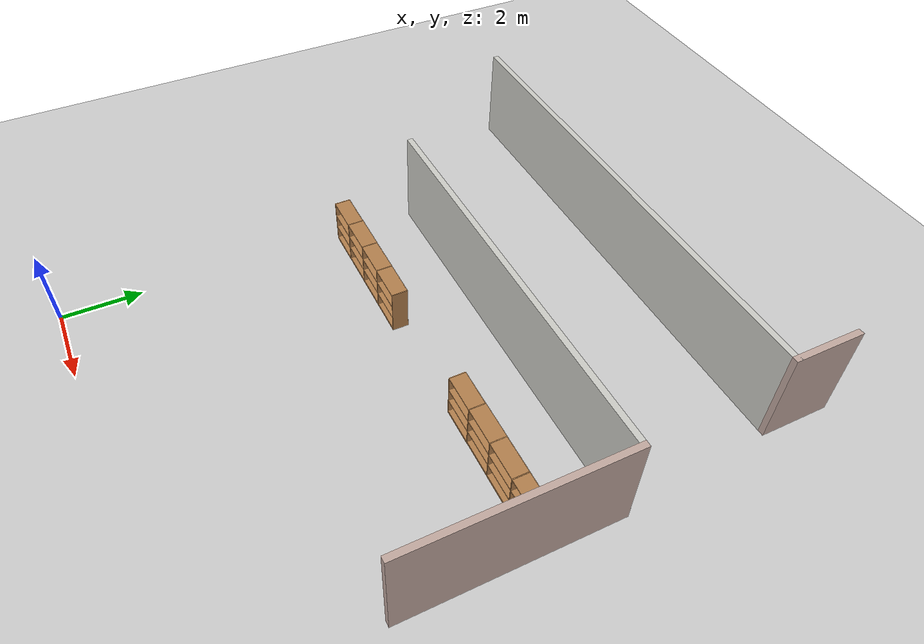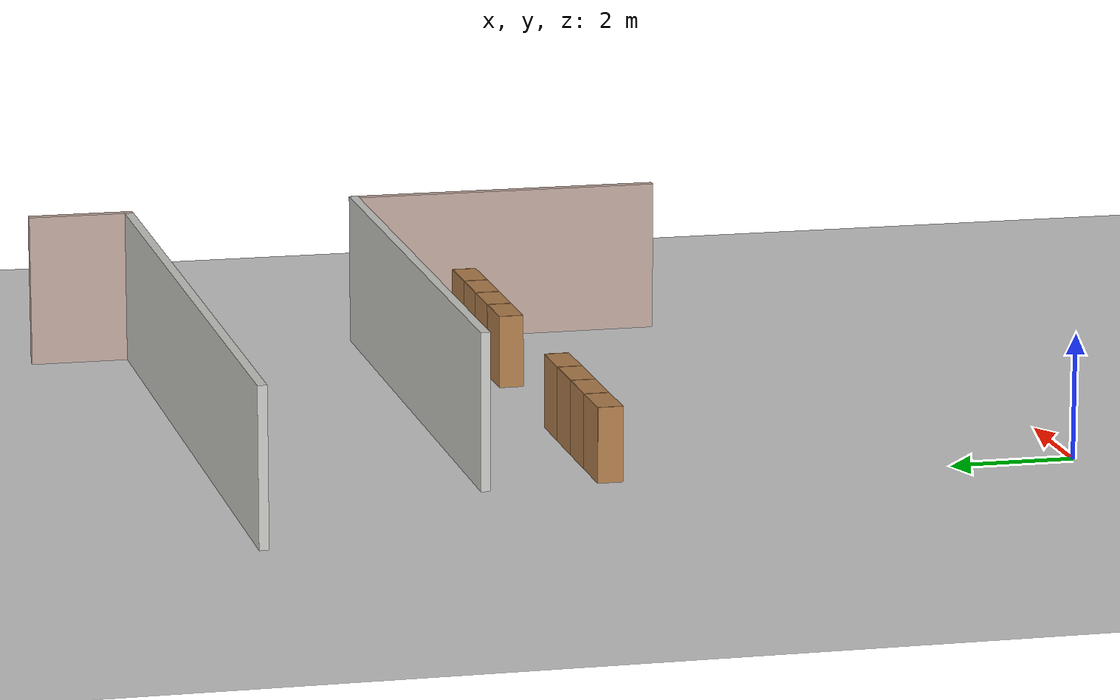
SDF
<sdf version="1.6">
 <world name="default">
  <model name="ground_plane">
   <static>1</static>
   <link name="link">
    <collision name="collision">
     <geometry><plane><normal>0 0 1</normal><size>100 100</size></plane></geometry>
     <surface><friction><ode><mu>100</mu><mu2>50</mu2></ode></friction></surface>
    </collision>
    <visual name="visual">
     <cast_shadows>0</cast_shadows>
     <geometry><plane><normal>0 0 1</normal><size>100 100</size></plane></geometry>
     <material>
      <script><uri>file://media/materials/scripts/gazebo.material</uri><name>Gazebo/Grey</name></script>
     </material>
    </visual>
   </link>
  </model>
  <model name="floor">
   <link name="Wall_138">
    <pose>2.52989 14.5529 0 0 -0 0</pose>
    <visual name="Wall_138_Visual">
     <pose>0 0 1.25 0 -0 0</pose>
     <geometry><box><size>12.5 0.15 2.5</size></box></geometry>
     <material>
      <script><uri>file://media/materials/scripts/gazebo.material</uri><name>Gazebo/CeilingTiled</name></script>
      <ambient>0.760784 0.662745 0.627451 1</ambient>
     </material>
     <meta><layer>0</layer></meta>
    </visual>
    <collision name="Wall_138_Collision">
     <pose>0 0 1.25 0 -0 0</pose>
     <geometry><box><size>12.5 0.15 2.5</size></box></geometry>
     <surface>
      <friction>
       <ode><mu>1</mu><mu2>1</mu2><fdir1>0 0 0</fdir1><slip1>0</slip1><slip2>0</slip2></ode>
       <torsional>
        <coefficient>1</coefficient>
        <patch_radius>0</patch_radius>
        <surface_radius>0</surface_radius>
        <use_patch_radius>1</use_patch_radius>
        <ode><slip>0</slip></ode>
       </torsional>
      </friction>
      <bounce><restitution_coefficient>0</restitution_coefficient><threshold>1e+06</threshold></bounce>
      <contact>
       <collide_without_contact>0</collide_without_contact>
       <collide_without_contact_bitmask>1</collide_without_contact_bitmask>
       <collide_bitmask>1</collide_bitmask>
       <ode>
        <soft_cfm>0</soft_cfm>
        <soft_erp>0.2</soft_erp>
        <kp>1e+13</kp>
        <kd>1</kd>
        <max_vel>0.01</max_vel>
        <min_depth>0</min_depth>
       </ode>
       <bullet>
        <split_impulse>1</split_impulse>
        <split_impulse_penetration_threshold>-0.01</split_impulse_penetration_threshold>
        <soft_cfm>0</soft_cfm>
        <soft_erp>0.2</soft_erp>
        <kp>1e+13</kp>
        <kd>1</kd>
       </bullet>
      </contact>
     </surface>
    </collision>
   </link>
   <link name="Wall_139">
    <pose>8.70489 15.3529 0 0 -0 1.5708</pose>
    <visual name="Wall_139_Visual">
     <pose>0 0 1.25 0 -0 0</pose>
     <geometry><box><size>1.75 0.15 2.5</size></box></geometry>
     <material>
      <script><uri>file://media/materials/scripts/gazebo.material</uri><name>Gazebo/Grey</name></script>
      <ambient>0.760784 0.662745 0.627451 1</ambient>
     </material>
     <meta><layer>0</layer></meta>
    </visual>
    <collision name="Wall_139_Collision">
     <pose>0 0 1.25 0 -0 0</pose>
     <geometry><box><size>1.75 0.15 2.5</size></box></geometry>
     <surface>
      <friction>
       <ode><mu>1</mu><mu2>1</mu2><fdir1>0 0 0</fdir1><slip1>0</slip1><slip2>0</slip2></ode>
       <torsional>
        <coefficient>1</coefficient>
        <patch_radius>0</patch_radius>
        <surface_radius>0</surface_radius>
        <use_patch_radius>1</use_patch_radius>
        <ode><slip>0</slip></ode>
       </torsional>
      </friction>
      <bounce><restitution_coefficient>0</restitution_coefficient><threshold>1e+06</threshold></bounce>
      <contact>
       <collide_without_contact>0</collide_without_contact>
       <collide_without_contact_bitmask>1</collide_without_contact_bitmask>
       <collide_bitmask>1</collide_bitmask>
       <ode>
        <soft_cfm>0</soft_cfm>
        <soft_erp>0.2</soft_erp>
        <kp>1e+13</kp>
        <kd>1</kd>
        <max_vel>0.01</max_vel>
        <min_depth>0</min_depth>
       </ode>
       <bullet>
        <split_impulse>1</split_impulse>
        <split_impulse_penetration_threshold>-0.01</split_impulse_penetration_threshold>
        <soft_cfm>0</soft_cfm>
        <soft_erp>0.2</soft_erp>
        <kp>1e+13</kp>
        <kd>1</kd>
       </bullet>
      </contact>
     </surface>
    </collision>
   </link>
   <link name="Wall_200">
    <pose>3.99765 10.6471 0 0 -0 0</pose>
    <visual name="Wall_200_Visual">
     <pose>0 0 1.25 0 -0 0</pose>
     <geometry><box><size>10.3 0.15 2.5</size></box></geometry>
     <material>
      <script><uri>file://media/materials/scripts/gazebo.material</uri><name>Gazebo/CeilingTiled</name></script>
      <ambient>0.760784 0.662745 0.627451 1</ambient>
     </material>
     <meta><layer>0</layer></meta>
    </visual>
    <collision name="Wall_200_Collision">
     <pose>0 0 1.25 0 -0 0</pose>
     <geometry><box><size>10.3 0.15 2.5</size></box></geometry>
     <surface>
      <friction>
       <ode><mu>1</mu><mu2>1</mu2><fdir1>0 0 0</fdir1><slip1>0</slip1><slip2>0</slip2></ode>
       <torsional>
        <coefficient>1</coefficient>
        <patch_radius>0</patch_radius>
        <surface_radius>0</surface_radius>
        <use_patch_radius>1</use_patch_radius>
        <ode><slip>0</slip></ode>
       </torsional>
      </friction>
      <bounce><restitution_coefficient>0</restitution_coefficient><threshold>1e+06</threshold></bounce>
      <contact>
       <collide_without_contact>0</collide_without_contact>
       <collide_without_contact_bitmask>1</collide_without_contact_bitmask>
       <collide_bitmask>1</collide_bitmask>
       <ode>
        <soft_cfm>0</soft_cfm>
        <soft_erp>0.2</soft_erp>
        <kp>1e+13</kp>
        <kd>1</kd>
        <max_vel>0.01</max_vel>
        <min_depth>0</min_depth>
       </ode>
       <bullet>
        <split_impulse>1</split_impulse>
        <split_impulse_penetration_threshold>-0.01</split_impulse_penetration_threshold>
        <soft_cfm>0</soft_cfm>
        <soft_erp>0.2</soft_erp>
        <kp>1e+13</kp>
        <kd>1</kd>
       </bullet>
      </contact>
     </surface>
    </collision>
   </link>
   <link name="Wall_81">
    <pose>9.07265 8.09708 0 0 0 -1.5708</pose>
    <visual name="Wall_81_Visual">
     <pose>0 0 1.25 0 -0 0</pose>
     <geometry><box><size>5.25 0.15 2.5</size></box></geometry>
     <material>
      <script><uri>file://media/materials/scripts/gazebo.material</uri><name>Gazebo/Grey</name></script>
      <ambient>0.760784 0.662745 0.627451 1</ambient>
     </material>
     <meta><layer>0</layer></meta>
    </visual>
    <collision name="Wall_81_Collision">
     <pose>0 0 1.25 0 -0 0</pose>
     <geometry><box><size>5.25 0.15 2.5</size></box></geometry>
     <surface>
      <friction>
       <ode><mu>1</mu><mu2>1</mu2><fdir1>0 0 0</fdir1><slip1>0</slip1><slip2>0</slip2></ode>
       <torsional>
        <coefficient>1</coefficient>
        <patch_radius>0</patch_radius>
        <surface_radius>0</surface_radius>
        <use_patch_radius>1</use_patch_radius>
        <ode><slip>0</slip></ode>
       </torsional>
      </friction>
      <bounce><restitution_coefficient>0</restitution_coefficient><threshold>1e+06</threshold></bounce>
      <contact>
       <collide_without_contact>0</collide_without_contact>
       <collide_without_contact_bitmask>1</collide_without_contact_bitmask>
       <collide_bitmask>1</collide_bitmask>
       <ode>
        <soft_cfm>0</soft_cfm>
        <soft_erp>0.2</soft_erp>
        <kp>1e+13</kp>
        <kd>1</kd>
        <max_vel>0.01</max_vel>
        <min_depth>0</min_depth>
       </ode>
       <bullet>
        <split_impulse>1</split_impulse>
        <split_impulse_penetration_threshold>-0.01</split_impulse_penetration_threshold>
        <soft_cfm>0</soft_cfm>
        <soft_erp>0.2</soft_erp>
        <kp>1e+13</kp>
        <kd>1</kd>
       </bullet>
      </contact>
     </surface>
    </collision>
   </link>
   <static>1</static>
   <pose>1.26361 -1.27025 0 0 -0 0</pose>
  </model>
  <model name="Bookshelf-4_clone_2">
   <model name="bookshelf">
    <static>1</static>
    <link name="link">
     <inertial><mass>1</mass></inertial>
     <collision name="back">
      <pose>0 0.005 0.6 0 -0 0</pose>
      <geometry><box><size>0.9 0.01 1.2</size></box></geometry>
     </collision>
     <visual name="visual1">
      <pose>0 0.005 0.6 0 -0 0</pose>
      <geometry><box><size>0.9 0.01 1.2</size></box></geometry>
      <material>
       <script><uri>file://media/materials/scripts/gazebo.material</uri><name>Gazebo/Wood</name></script>
      </material>
     </visual>
     <collision name="left_side">
      <pose>0.45 -0.195 0.6 0 -0 0</pose>
      <geometry><box><size>0.02 0.4 1.2</size></box></geometry>
     </collision>
     <visual name="visual2">
      <pose>0.45 -0.195 0.6 0 -0 0</pose>
      <geometry><box><size>0.02 0.4 1.2</size></box></geometry>
      <material>
       <script><uri>file://media/materials/scripts/gazebo.material</uri><name>Gazebo/Wood</name></script>
      </material>
     </visual>
     <collision name="right_side">
      <pose>-0.45 -0.195 0.6 0 -0 0</pose>
      <geometry><box><size>0.02 0.4 1.2</size></box></geometry>
     </collision>
     <visual name="visual3">
      <pose>-0.45 -0.195 0.6 0 -0 0</pose>
      <geometry><box><size>0.02 0.4 1.2</size></box></geometry>
      <material>
       <script><uri>file://media/materials/scripts/gazebo.material</uri><name>Gazebo/Wood</name></script>
      </material>
     </visual>
     <collision name="bottom">
      <pose>0 -0.195 0.03 0 -0 0</pose>
      <geometry><box><size>0.88 0.4 0.06</size></box></geometry>
     </collision>
     <visual name="visual4">
      <pose>0 -0.195 0.03 0 -0 0</pose>
      <geometry><box><size>0.88 0.4 0.06</size></box></geometry>
      <material>
       <script><uri>file://media/materials/scripts/gazebo.material</uri><name>Gazebo/Wood</name></script>
      </material>
     </visual>
     <collision name="top">
      <pose>0 -0.195 1.19 0 -0 0</pose>
      <geometry><box><size>0.88 0.4 0.02</size></box></geometry>
     </collision>
     <visual name="visual5">
      <pose>0 -0.195 1.19 0 -0 0</pose>
      <geometry><box><size>0.88 0.4 0.02</size></box></geometry>
      <material>
       <script><uri>file://media/materials/scripts/gazebo.material</uri><name>Gazebo/Wood</name></script>
      </material>
     </visual>
     <collision name="low_shelf">
      <pose>0 -0.195 0.43 0 -0 0</pose>
      <geometry><box><size>0.88 0.4 0.02</size></box></geometry>
     </collision>
     <visual name="visual6">
      <pose>0 -0.195 0.43 0 -0 0</pose>
      <geometry><box><size>0.88 0.4 0.02</size></box></geometry>
      <material>
       <script><uri>file://media/materials/scripts/gazebo.material</uri><name>Gazebo/Wood</name></script>
      </material>
     </visual>
     <collision name="high_shelf">
      <pose>0 -0.195 0.8 0 -0 0</pose>
      <geometry><box><size>0.88 0.4 0.02</size></box></geometry>
     </collision>
     <visual name="visual7">
      <pose>0 -0.195 0.8 0 -0 0</pose>
      <geometry><box><size>0.88 0.4 0.02</size></box></geometry>
      <material>
       <script><uri>file://media/materials/scripts/gazebo.material</uri><name>Gazebo/Wood</name></script>
      </material>
     </visual>
    </link>
    <pose>-1.35671 -0.002097 0 0 -0 0</pose>
   </model>
   <model name="bookshelf_0">
    <static>1</static>
    <link name="link">
     <inertial><mass>1</mass></inertial>
     <collision name="back">
      <pose>0 0.005 0.6 0 -0 0</pose>
      <geometry><box><size>0.9 0.01 1.2</size></box></geometry>
     </collision>
     <visual name="visual1">
      <pose>0 0.005 0.6 0 -0 0</pose>
      <geometry><box><size>0.9 0.01 1.2</size></box></geometry>
      <material>
       <script><uri>file://media/materials/scripts/gazebo.material</uri><name>Gazebo/Wood</name></script>
      </material>
     </visual>
     <collision name="left_side">
      <pose>0.45 -0.195 0.6 0 -0 0</pose>
      <geometry><box><size>0.02 0.4 1.2</size></box></geometry>
     </collision>
     <visual name="visual2">
      <pose>0.45 -0.195 0.6 0 -0 0</pose>
      <geometry><box><size>0.02 0.4 1.2</size></box></geometry>
      <material>
       <script><uri>file://media/materials/scripts/gazebo.material</uri><name>Gazebo/Wood</name></script>
      </material>
     </visual>
     <collision name="right_side">
      <pose>-0.45 -0.195 0.6 0 -0 0</pose>
      <geometry><box><size>0.02 0.4 1.2</size></box></geometry>
     </collision>
     <visual name="visual3">
      <pose>-0.45 -0.195 0.6 0 -0 0</pose>
      <geometry><box><size>0.02 0.4 1.2</size></box></geometry>
      <material>
       <script><uri>file://media/materials/scripts/gazebo.material</uri><name>Gazebo/Wood</name></script>
      </material>
     </visual>
     <collision name="bottom">
      <pose>0 -0.195 0.03 0 -0 0</pose>
      <geometry><box><size>0.88 0.4 0.06</size></box></geometry>
     </collision>
     <visual name="visual4">
      <pose>0 -0.195 0.03 0 -0 0</pose>
      <geometry><box><size>0.88 0.4 0.06</size></box></geometry>
      <material>
       <script><uri>file://media/materials/scripts/gazebo.material</uri><name>Gazebo/Wood</name></script>
      </material>
     </visual>
     <collision name="top">
      <pose>0 -0.195 1.19 0 -0 0</pose>
      <geometry><box><size>0.88 0.4 0.02</size></box></geometry>
     </collision>
     <visual name="visual5">
      <pose>0 -0.195 1.19 0 -0 0</pose>
      <geometry><box><size>0.88 0.4 0.02</size></box></geometry>
      <material>
       <script><uri>file://media/materials/scripts/gazebo.material</uri><name>Gazebo/Wood</name></script>
      </material>
     </visual>
     <collision name="low_shelf">
      <pose>0 -0.195 0.43 0 -0 0</pose>
      <geometry><box><size>0.88 0.4 0.02</size></box></geometry>
     </collision>
     <visual name="visual6">
      <pose>0 -0.195 0.43 0 -0 0</pose>
      <geometry><box><size>0.88 0.4 0.02</size></box></geometry>
      <material>
       <script><uri>file://media/materials/scripts/gazebo.material</uri><name>Gazebo/Wood</name></script>
      </material>
     </visual>
     <collision name="high_shelf">
      <pose>0 -0.195 0.8 0 -0 0</pose>
      <geometry><box><size>0.88 0.4 0.02</size></box></geometry>
     </collision>
     <visual name="visual7">
      <pose>0 -0.195 0.8 0 -0 0</pose>
      <geometry><box><size>0.88 0.4 0.02</size></box></geometry>
      <material>
       <script><uri>file://media/materials/scripts/gazebo.material</uri><name>Gazebo/Wood</name></script>
      </material>
     </visual>
    </link>
    <pose>-0.452974 0.001386 0 0 -0 0</pose>
   </model>
   <model name="bookshelf_1">
    <static>1</static>
    <link name="link">
     <inertial><mass>1</mass></inertial>
     <collision name="back">
      <pose>0 0.005 0.6 0 -0 0</pose>
      <geometry><box><size>0.9 0.01 1.2</size></box></geometry>
     </collision>
     <visual name="visual1">
      <pose>0 0.005 0.6 0 -0 0</pose>
      <geometry><box><size>0.9 0.01 1.2</size></box></geometry>
      <material>
       <script><uri>file://media/materials/scripts/gazebo.material</uri><name>Gazebo/Wood</name></script>
      </material>
     </visual>
     <collision name="left_side">
      <pose>0.45 -0.195 0.6 0 -0 0</pose>
      <geometry><box><size>0.02 0.4 1.2</size></box></geometry>
     </collision>
     <visual name="visual2">
      <pose>0.45 -0.195 0.6 0 -0 0</pose>
      <geometry><box><size>0.02 0.4 1.2</size></box></geometry>
      <material>
       <script><uri>file://media/materials/scripts/gazebo.material</uri><name>Gazebo/Wood</name></script>
      </material>
     </visual>
     <collision name="right_side">
      <pose>-0.45 -0.195 0.6 0 -0 0</pose>
      <geometry><box><size>0.02 0.4 1.2</size></box></geometry>
     </collision>
     <visual name="visual3">
      <pose>-0.45 -0.195 0.6 0 -0 0</pose>
      <geometry><box><size>0.02 0.4 1.2</size></box></geometry>
      <material>
       <script><uri>file://media/materials/scripts/gazebo.material</uri><name>Gazebo/Wood</name></script>
      </material>
     </visual>
     <collision name="bottom">
      <pose>0 -0.195 0.03 0 -0 0</pose>
      <geometry><box><size>0.88 0.4 0.06</size></box></geometry>
     </collision>
     <visual name="visual4">
      <pose>0 -0.195 0.03 0 -0 0</pose>
      <geometry><box><size>0.88 0.4 0.06</size></box></geometry>
      <material>
       <script><uri>file://media/materials/scripts/gazebo.material</uri><name>Gazebo/Wood</name></script>
      </material>
     </visual>
     <collision name="top">
      <pose>0 -0.195 1.19 0 -0 0</pose>
      <geometry><box><size>0.88 0.4 0.02</size></box></geometry>
     </collision>
     <visual name="visual5">
      <pose>0 -0.195 1.19 0 -0 0</pose>
      <geometry><box><size>0.88 0.4 0.02</size></box></geometry>
      <material>
       <script><uri>file://media/materials/scripts/gazebo.material</uri><name>Gazebo/Wood</name></script>
      </material>
     </visual>
     <collision name="low_shelf">
      <pose>0 -0.195 0.43 0 -0 0</pose>
      <geometry><box><size>0.88 0.4 0.02</size></box></geometry>
     </collision>
     <visual name="visual6">
      <pose>0 -0.195 0.43 0 -0 0</pose>
      <geometry><box><size>0.88 0.4 0.02</size></box></geometry>
      <material>
       <script><uri>file://media/materials/scripts/gazebo.material</uri><name>Gazebo/Wood</name></script>
      </material>
     </visual>
     <collision name="high_shelf">
      <pose>0 -0.195 0.8 0 -0 0</pose>
      <geometry><box><size>0.88 0.4 0.02</size></box></geometry>
     </collision>
     <visual name="visual7">
      <pose>0 -0.195 0.8 0 -0 0</pose>
      <geometry><box><size>0.88 0.4 0.02</size></box></geometry>
      <material>
       <script><uri>file://media/materials/scripts/gazebo.material</uri><name>Gazebo/Wood</name></script>
      </material>
     </visual>
    </link>
    <pose>0.450456 0.000733 0 0 -0 0</pose>
   </model>
   <model name="bookshelf_2">
    <static>1</static>
    <link name="link">
     <inertial><mass>1</mass></inertial>
     <collision name="back">
      <pose>0 0.005 0.6 0 -0 0</pose>
      <geometry><box><size>0.9 0.01 1.2</size></box></geometry>
     </collision>
     <visual name="visual1">
      <pose>0 0.005 0.6 0 -0 0</pose>
      <geometry><box><size>0.9 0.01 1.2</size></box></geometry>
      <material>
       <script><uri>file://media/materials/scripts/gazebo.material</uri><name>Gazebo/Wood</name></script>
      </material>
     </visual>
     <collision name="left_side">
      <pose>0.45 -0.195 0.6 0 -0 0</pose>
      <geometry><box><size>0.02 0.4 1.2</size></box></geometry>
     </collision>
     <visual name="visual2">
      <pose>0.45 -0.195 0.6 0 -0 0</pose>
      <geometry><box><size>0.02 0.4 1.2</size></box></geometry>
      <material>
       <script><uri>file://media/materials/scripts/gazebo.material</uri><name>Gazebo/Wood</name></script>
      </material>
     </visual>
     <collision name="right_side">
      <pose>-0.45 -0.195 0.6 0 -0 0</pose>
      <geometry><box><size>0.02 0.4 1.2</size></box></geometry>
     </collision>
     <visual name="visual3">
      <pose>-0.45 -0.195 0.6 0 -0 0</pose>
      <geometry><box><size>0.02 0.4 1.2</size></box></geometry>
      <material>
       <script><uri>file://media/materials/scripts/gazebo.material</uri><name>Gazebo/Wood</name></script>
      </material>
     </visual>
     <collision name="bottom">
      <pose>0 -0.195 0.03 0 -0 0</pose>
      <geometry><box><size>0.88 0.4 0.06</size></box></geometry>
     </collision>
     <visual name="visual4">
      <pose>0 -0.195 0.03 0 -0 0</pose>
      <geometry><box><size>0.88 0.4 0.06</size></box></geometry>
      <material>
       <script><uri>file://media/materials/scripts/gazebo.material</uri><name>Gazebo/Wood</name></script>
      </material>
     </visual>
     <collision name="top">
      <pose>0 -0.195 1.19 0 -0 0</pose>
      <geometry><box><size>0.88 0.4 0.02</size></box></geometry>
     </collision>
     <visual name="visual5">
      <pose>0 -0.195 1.19 0 -0 0</pose>
      <geometry><box><size>0.88 0.4 0.02</size></box></geometry>
      <material>
       <script><uri>file://media/materials/scripts/gazebo.material</uri><name>Gazebo/Wood</name></script>
      </material>
     </visual>
     <collision name="low_shelf">
      <pose>0 -0.195 0.43 0 -0 0</pose>
      <geometry><box><size>0.88 0.4 0.02</size></box></geometry>
     </collision>
     <visual name="visual6">
      <pose>0 -0.195 0.43 0 -0 0</pose>
      <geometry><box><size>0.88 0.4 0.02</size></box></geometry>
      <material>
       <script><uri>file://media/materials/scripts/gazebo.material</uri><name>Gazebo/Wood</name></script>
      </material>
     </visual>
     <collision name="high_shelf">
      <pose>0 -0.195 0.8 0 -0 0</pose>
      <geometry><box><size>0.88 0.4 0.02</size></box></geometry>
     </collision>
     <visual name="visual7">
      <pose>0 -0.195 0.8 0 -0 0</pose>
      <geometry><box><size>0.88 0.4 0.02</size></box></geometry>
      <material>
       <script><uri>file://media/materials/scripts/gazebo.material</uri><name>Gazebo/Wood</name></script>
      </material>
     </visual>
    </link>
    <pose>1.35922 -1.7e-05 0 0 -0 0</pose>
   </model>
   <static>0</static>
   <pose>2.02248 7.58893 0 0 -0 0</pose>
  </model>
  <model name="Bookshelf-4_clone_6">
   <model name="bookshelf">
    <static>1</static>
    <link name="link">
     <inertial><mass>1</mass></inertial>
     <collision name="back">
      <pose>0 0.005 0.6 0 -0 0</pose>
      <geometry><box><size>0.9 0.01 1.2</size></box></geometry>
     </collision>
     <visual name="visual1">
      <pose>0 0.005 0.6 0 -0 0</pose>
      <geometry><box><size>0.9 0.01 1.2</size></box></geometry>
      <material>
       <script><uri>file://media/materials/scripts/gazebo.material</uri><name>Gazebo/Wood</name></script>
      </material>
     </visual>
     <collision name="left_side">
      <pose>0.45 -0.195 0.6 0 -0 0</pose>
      <geometry><box><size>0.02 0.4 1.2</size></box></geometry>
     </collision>
     <visual name="visual2">
      <pose>0.45 -0.195 0.6 0 -0 0</pose>
      <geometry><box><size>0.02 0.4 1.2</size></box></geometry>
      <material>
       <script><uri>file://media/materials/scripts/gazebo.material</uri><name>Gazebo/Wood</name></script>
      </material>
     </visual>
     <collision name="right_side">
      <pose>-0.45 -0.195 0.6 0 -0 0</pose>
      <geometry><box><size>0.02 0.4 1.2</size></box></geometry>
     </collision>
     <visual name="visual3">
      <pose>-0.45 -0.195 0.6 0 -0 0</pose>
      <geometry><box><size>0.02 0.4 1.2</size></box></geometry>
      <material>
       <script><uri>file://media/materials/scripts/gazebo.material</uri><name>Gazebo/Wood</name></script>
      </material>
     </visual>
     <collision name="bottom">
      <pose>0 -0.195 0.03 0 -0 0</pose>
      <geometry><box><size>0.88 0.4 0.06</size></box></geometry>
     </collision>
     <visual name="visual4">
      <pose>0 -0.195 0.03 0 -0 0</pose>
      <geometry><box><size>0.88 0.4 0.06</size></box></geometry>
      <material>
       <script><uri>file://media/materials/scripts/gazebo.material</uri><name>Gazebo/Wood</name></script>
      </material>
     </visual>
     <collision name="top">
      <pose>0 -0.195 1.19 0 -0 0</pose>
      <geometry><box><size>0.88 0.4 0.02</size></box></geometry>
     </collision>
     <visual name="visual5">
      <pose>0 -0.195 1.19 0 -0 0</pose>
      <geometry><box><size>0.88 0.4 0.02</size></box></geometry>
      <material>
       <script><uri>file://media/materials/scripts/gazebo.material</uri><name>Gazebo/Wood</name></script>
      </material>
     </visual>
     <collision name="low_shelf">
      <pose>0 -0.195 0.43 0 -0 0</pose>
      <geometry><box><size>0.88 0.4 0.02</size></box></geometry>
     </collision>
     <visual name="visual6">
      <pose>0 -0.195 0.43 0 -0 0</pose>
      <geometry><box><size>0.88 0.4 0.02</size></box></geometry>
      <material>
       <script><uri>file://media/materials/scripts/gazebo.material</uri><name>Gazebo/Wood</name></script>
      </material>
     </visual>
     <collision name="high_shelf">
      <pose>0 -0.195 0.8 0 -0 0</pose>
      <geometry><box><size>0.88 0.4 0.02</size></box></geometry>
     </collision>
     <visual name="visual7">
      <pose>0 -0.195 0.8 0 -0 0</pose>
      <geometry><box><size>0.88 0.4 0.02</size></box></geometry>
      <material>
       <script><uri>file://media/materials/scripts/gazebo.material</uri><name>Gazebo/Wood</name></script>
      </material>
     </visual>
    </link>
    <pose>-1.35671 -0.002097 0 0 -0 0</pose>
   </model>
   <model name="bookshelf_0">
    <static>1</static>
    <link name="link">
     <inertial><mass>1</mass></inertial>
     <collision name="back">
      <pose>0 0.005 0.6 0 -0 0</pose>
      <geometry><box><size>0.9 0.01 1.2</size></box></geometry>
     </collision>
     <visual name="visual1">
      <pose>0 0.005 0.6 0 -0 0</pose>
      <geometry><box><size>0.9 0.01 1.2</size></box></geometry>
      <material>
       <script><uri>file://media/materials/scripts/gazebo.material</uri><name>Gazebo/Wood</name></script>
      </material>
     </visual>
     <collision name="left_side">
      <pose>0.45 -0.195 0.6 0 -0 0</pose>
      <geometry><box><size>0.02 0.4 1.2</size></box></geometry>
     </collision>
     <visual name="visual2">
      <pose>0.45 -0.195 0.6 0 -0 0</pose>
      <geometry><box><size>0.02 0.4 1.2</size></box></geometry>
      <material>
       <script><uri>file://media/materials/scripts/gazebo.material</uri><name>Gazebo/Wood</name></script>
      </material>
     </visual>
     <collision name="right_side">
      <pose>-0.45 -0.195 0.6 0 -0 0</pose>
      <geometry><box><size>0.02 0.4 1.2</size></box></geometry>
     </collision>
     <visual name="visual3">
      <pose>-0.45 -0.195 0.6 0 -0 0</pose>
      <geometry><box><size>0.02 0.4 1.2</size></box></geometry>
      <material>
       <script><uri>file://media/materials/scripts/gazebo.material</uri><name>Gazebo/Wood</name></script>
      </material>
     </visual>
     <collision name="bottom">
      <pose>0 -0.195 0.03 0 -0 0</pose>
      <geometry><box><size>0.88 0.4 0.06</size></box></geometry>
     </collision>
     <visual name="visual4">
      <pose>0 -0.195 0.03 0 -0 0</pose>
      <geometry><box><size>0.88 0.4 0.06</size></box></geometry>
      <material>
       <script><uri>file://media/materials/scripts/gazebo.material</uri><name>Gazebo/Wood</name></script>
      </material>
     </visual>
     <collision name="top">
      <pose>0 -0.195 1.19 0 -0 0</pose>
      <geometry><box><size>0.88 0.4 0.02</size></box></geometry>
     </collision>
     <visual name="visual5">
      <pose>0 -0.195 1.19 0 -0 0</pose>
      <geometry><box><size>0.88 0.4 0.02</size></box></geometry>
      <material>
       <script><uri>file://media/materials/scripts/gazebo.material</uri><name>Gazebo/Wood</name></script>
      </material>
     </visual>
     <collision name="low_shelf">
      <pose>0 -0.195 0.43 0 -0 0</pose>
      <geometry><box><size>0.88 0.4 0.02</size></box></geometry>
     </collision>
     <visual name="visual6">
      <pose>0 -0.195 0.43 0 -0 0</pose>
      <geometry><box><size>0.88 0.4 0.02</size></box></geometry>
      <material>
       <script><uri>file://media/materials/scripts/gazebo.material</uri><name>Gazebo/Wood</name></script>
      </material>
     </visual>
     <collision name="high_shelf">
      <pose>0 -0.195 0.8 0 -0 0</pose>
      <geometry><box><size>0.88 0.4 0.02</size></box></geometry>
     </collision>
     <visual name="visual7">
      <pose>0 -0.195 0.8 0 -0 0</pose>
      <geometry><box><size>0.88 0.4 0.02</size></box></geometry>
      <material>
       <script><uri>file://media/materials/scripts/gazebo.material</uri><name>Gazebo/Wood</name></script>
      </material>
     </visual>
    </link>
    <pose>-0.452974 0.001386 0 0 -0 0</pose>
   </model>
   <model name="bookshelf_1">
    <static>1</static>
    <link name="link">
     <inertial><mass>1</mass></inertial>
     <collision name="back">
      <pose>0 0.005 0.6 0 -0 0</pose>
      <geometry><box><size>0.9 0.01 1.2</size></box></geometry>
     </collision>
     <visual name="visual1">
      <pose>0 0.005 0.6 0 -0 0</pose>
      <geometry><box><size>0.9 0.01 1.2</size></box></geometry>
      <material>
       <script><uri>file://media/materials/scripts/gazebo.material</uri><name>Gazebo/Wood</name></script>
      </material>
     </visual>
     <collision name="left_side">
      <pose>0.45 -0.195 0.6 0 -0 0</pose>
      <geometry><box><size>0.02 0.4 1.2</size></box></geometry>
     </collision>
     <visual name="visual2">
      <pose>0.45 -0.195 0.6 0 -0 0</pose>
      <geometry><box><size>0.02 0.4 1.2</size></box></geometry>
      <material>
       <script><uri>file://media/materials/scripts/gazebo.material</uri><name>Gazebo/Wood</name></script>
      </material>
     </visual>
     <collision name="right_side">
      <pose>-0.45 -0.195 0.6 0 -0 0</pose>
      <geometry><box><size>0.02 0.4 1.2</size></box></geometry>
     </collision>
     <visual name="visual3">
      <pose>-0.45 -0.195 0.6 0 -0 0</pose>
      <geometry><box><size>0.02 0.4 1.2</size></box></geometry>
      <material>
       <script><uri>file://media/materials/scripts/gazebo.material</uri><name>Gazebo/Wood</name></script>
      </material>
     </visual>
     <collision name="bottom">
      <pose>0 -0.195 0.03 0 -0 0</pose>
      <geometry><box><size>0.88 0.4 0.06</size></box></geometry>
     </collision>
     <visual name="visual4">
      <pose>0 -0.195 0.03 0 -0 0</pose>
      <geometry><box><size>0.88 0.4 0.06</size></box></geometry>
      <material>
       <script><uri>file://media/materials/scripts/gazebo.material</uri><name>Gazebo/Wood</name></script>
      </material>
     </visual>
     <collision name="top">
      <pose>0 -0.195 1.19 0 -0 0</pose>
      <geometry><box><size>0.88 0.4 0.02</size></box></geometry>
     </collision>
     <visual name="visual5">
      <pose>0 -0.195 1.19 0 -0 0</pose>
      <geometry><box><size>0.88 0.4 0.02</size></box></geometry>
      <material>
       <script><uri>file://media/materials/scripts/gazebo.material</uri><name>Gazebo/Wood</name></script>
      </material>
     </visual>
     <collision name="low_shelf">
      <pose>0 -0.195 0.43 0 -0 0</pose>
      <geometry><box><size>0.88 0.4 0.02</size></box></geometry>
     </collision>
     <visual name="visual6">
      <pose>0 -0.195 0.43 0 -0 0</pose>
      <geometry><box><size>0.88 0.4 0.02</size></box></geometry>
      <material>
       <script><uri>file://media/materials/scripts/gazebo.material</uri><name>Gazebo/Wood</name></script>
      </material>
     </visual>
     <collision name="high_shelf">
      <pose>0 -0.195 0.8 0 -0 0</pose>
      <geometry><box><size>0.88 0.4 0.02</size></box></geometry>
     </collision>
     <visual name="visual7">
      <pose>0 -0.195 0.8 0 -0 0</pose>
      <geometry><box><size>0.88 0.4 0.02</size></box></geometry>
      <material>
       <script><uri>file://media/materials/scripts/gazebo.material</uri><name>Gazebo/Wood</name></script>
      </material>
     </visual>
    </link>
    <pose>0.450456 0.000733 0 0 -0 0</pose>
   </model>
   <model name="bookshelf_2">
    <static>1</static>
    <link name="link">
     <inertial><mass>1</mass></inertial>
     <collision name="back">
      <pose>0 0.005 0.6 0 -0 0</pose>
      <geometry><box><size>0.9 0.01 1.2</size></box></geometry>
     </collision>
     <visual name="visual1">
      <pose>0 0.005 0.6 0 -0 0</pose>
      <geometry><box><size>0.9 0.01 1.2</size></box></geometry>
      <material>
       <script><uri>file://media/materials/scripts/gazebo.material</uri><name>Gazebo/Wood</name></script>
      </material>
     </visual>
     <collision name="left_side">
      <pose>0.45 -0.195 0.6 0 -0 0</pose>
      <geometry><box><size>0.02 0.4 1.2</size></box></geometry>
     </collision>
     <visual name="visual2">
      <pose>0.45 -0.195 0.6 0 -0 0</pose>
      <geometry><box><size>0.02 0.4 1.2</size></box></geometry>
      <material>
       <script><uri>file://media/materials/scripts/gazebo.material</uri><name>Gazebo/Wood</name></script>
      </material>
     </visual>
     <collision name="right_side">
      <pose>-0.45 -0.195 0.6 0 -0 0</pose>
      <geometry><box><size>0.02 0.4 1.2</size></box></geometry>
     </collision>
     <visual name="visual3">
      <pose>-0.45 -0.195 0.6 0 -0 0</pose>
      <geometry><box><size>0.02 0.4 1.2</size></box></geometry>
      <material>
       <script><uri>file://media/materials/scripts/gazebo.material</uri><name>Gazebo/Wood</name></script>
      </material>
     </visual>
     <collision name="bottom">
      <pose>0 -0.195 0.03 0 -0 0</pose>
      <geometry><box><size>0.88 0.4 0.06</size></box></geometry>
     </collision>
     <visual name="visual4">
      <pose>0 -0.195 0.03 0 -0 0</pose>
      <geometry><box><size>0.88 0.4 0.06</size></box></geometry>
      <material>
       <script><uri>file://media/materials/scripts/gazebo.material</uri><name>Gazebo/Wood</name></script>
      </material>
     </visual>
     <collision name="top">
      <pose>0 -0.195 1.19 0 -0 0</pose>
      <geometry><box><size>0.88 0.4 0.02</size></box></geometry>
     </collision>
     <visual name="visual5">
      <pose>0 -0.195 1.19 0 -0 0</pose>
      <geometry><box><size>0.88 0.4 0.02</size></box></geometry>
      <material>
       <script><uri>file://media/materials/scripts/gazebo.material</uri><name>Gazebo/Wood</name></script>
      </material>
     </visual>
     <collision name="low_shelf">
      <pose>0 -0.195 0.43 0 -0 0</pose>
      <geometry><box><size>0.88 0.4 0.02</size></box></geometry>
     </collision>
     <visual name="visual6">
      <pose>0 -0.195 0.43 0 -0 0</pose>
      <geometry><box><size>0.88 0.4 0.02</size></box></geometry>
      <material>
       <script><uri>file://media/materials/scripts/gazebo.material</uri><name>Gazebo/Wood</name></script>
      </material>
     </visual>
     <collision name="high_shelf">
      <pose>0 -0.195 0.8 0 -0 0</pose>
      <geometry><box><size>0.88 0.4 0.02</size></box></geometry>
     </collision>
     <visual name="visual7">
      <pose>0 -0.195 0.8 0 -0 0</pose>
      <geometry><box><size>0.88 0.4 0.02</size></box></geometry>
      <material>
       <script><uri>file://media/materials/scripts/gazebo.material</uri><name>Gazebo/Wood</name></script>
      </material>
     </visual>
    </link>
    <pose>1.35922 -1.7e-05 0 0 -0 0</pose>
   </model>
   <static>0</static>
   <pose>8.37331 7.71243 0 0 -0 0</pose>
  </model>
 </world>
</sdf>
